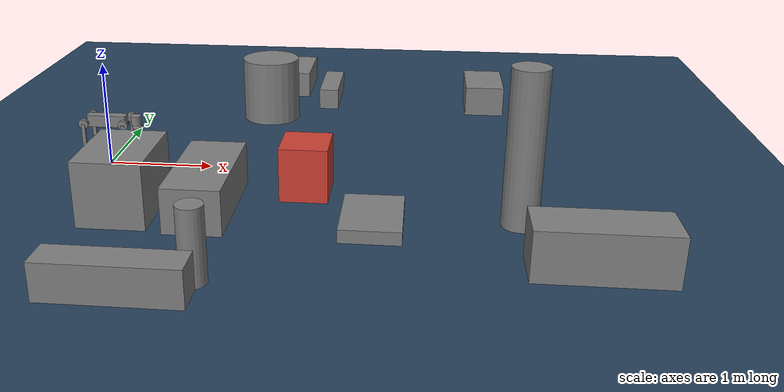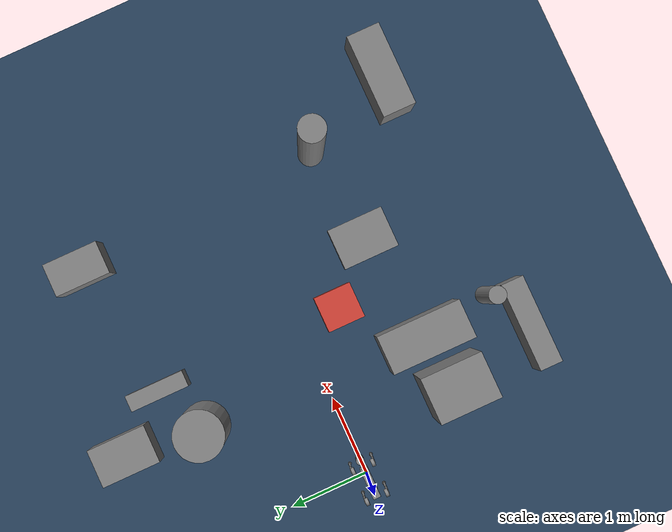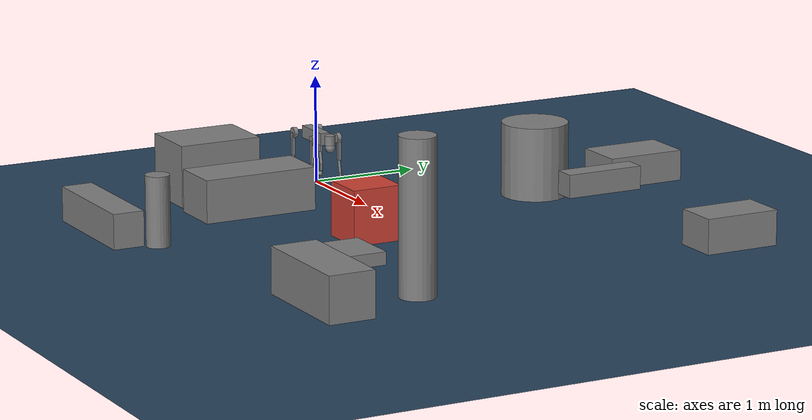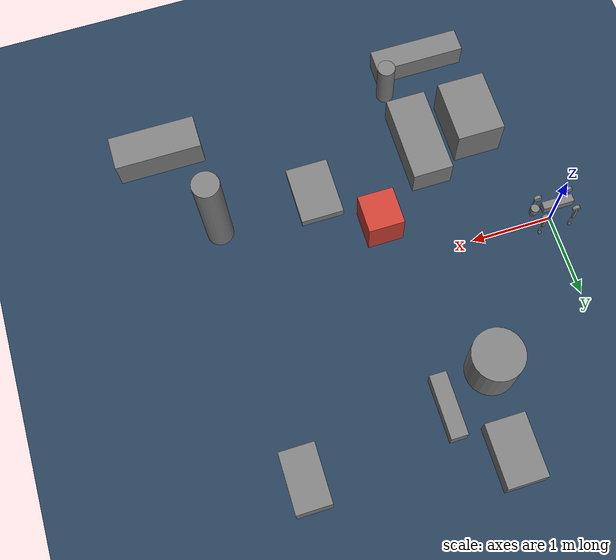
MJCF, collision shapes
<?xml version="1.0" ?>
<mujoco model="go2 rand_06">
  <include file="go2.xml"/>
  <visual>
    <headlight diffuse="0.6 0.6 0.6" ambient="0.3 0.3 0.3" specular="0 0 0"/>
    <rgba haze="0.15 0.25 0.35 1"/>
    <global azimuth="-130" elevation="-20"/>
  </visual>
  <asset>
    <texture type="skybox" builtin="gradient" rgb1="0.3 0.5 0.7" rgb2="0 0 0" width="512" height="3072"/>
    <texture type="2d" name="groundplane" builtin="checker" mark="edge" rgb1="0.2 0.3 0.4" rgb2="0.1 0.2 0.3" markrgb="0.8 0.8 0.8" width="300" height="300"/>
    <material name="groundplane" texture="groundplane" texuniform="true" texrepeat="5 5" reflectance="0.2"/>
  </asset>
  <worldbody>
    <light pos="0 0 1.5" dir="0 0 -1" directional="true"/>
    <geom name="floor" size="0 0 0.05" type="plane" material="groundplane"/>
    <geom type="box" pos="3.73204 2.14243 0.167452" size="0.208601 0.349801 0.159308"/>
    <geom type="box" pos="1.27531 -1.30153 0.368475" size="0.242365 0.52878 0.194362"/>
    <geom type="box" pos="2.64454 -1.15842 0.0673573" size="0.261935 0.360678 0.0591382"/>
    <geom type="box" pos="4.3296 -2.12469 0.385354" size="0.520458 0.206884 0.20323"/>
    <geom type="box" pos="0.876945 -2.53825 0.188107" size="0.560572 0.143774 0.158785"/>
    <geom type="box" pos="2.0015 1.85949 0.240365" size="0.101102 0.370906 0.107705"/>
    <geom type="box" pos="0.605686 -1.39375 0.448516" size="0.286206 0.38252 0.280576"/>
    <geom type="box" pos="1.46075 2.54218 0.188262" size="0.239593 0.369644 0.141341"/>
    <geom type="cylinder" pos="3.87734 -1.0159 0.689972" size="0.160626 0.689972 0.689972"/>
    <geom type="cylinder" pos="1.38434 -2.23754 0.319204" size="0.108509 0.319204 0.319204"/>
    <geom type="cylinder" pos="1.35188 1.55563 0.34029" size="0.306419 0.34029 0.34029"/>
    <geom type="box" pos="2.0088 -0.524655 0.25" size="0.218434 0.230511 0.25" rgba="0.8 0.25 0.2 1"/>
  </worldbody>
</mujoco>

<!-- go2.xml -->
<mujoco model="go2">
  <compiler angle="radian" meshdir="assets" autolimits="true" />

  <option cone="elliptic" impratio="100" />

  <default>
    <default class="go2">
      <geom friction="0.4" margin="0.001" condim="1"/>
      <joint axis="0 1 0" damping="0.1" armature="0.01" frictionloss="0.2"/>
      <motor ctrlrange="-23.7 23.7"/>
      <default class="abduction">
        <joint axis="1 0 0" range="-1.0472 1.0472"/>
      </default>
      <default class="hip">
        <default class="front_hip">
          <joint range="-1.5708 3.4907"/>
        </default>
        <default class="back_hip">
          <joint range="-0.5236 4.5379"/>
        </default>
      </default>
      <default class="knee">
        <joint range="-2.7227 -0.83776"/>
        <motor ctrlrange="-45.43 45.43"/>
      </default>
      <default class="visual">
        <geom type="mesh" contype="0" conaffinity="0" group="2"/>
      </default>
      <default class="collision">
        <geom group="3"/>
        <default class="foot">
          <geom size="0.022" pos="-0.002 0 -0.213" priority="1" condim="6"
            friction="0.4 0.02 0.01"/>
        </default>
      </default>
    </default>
  </default>

  <asset>
    <material name="metal" rgba=".9 .95 .95 1" />
    <material name="black" rgba="0 0 0 1" />
    <material name="white" rgba="1 1 1 1" />
    <material name="gray" rgba="0.671705 0.692426 0.774270 1" />
    <material name="transparent" rgba="1 1 1 0.01" />

    <mesh file="base_0.obj" />
    <mesh file="base_1.obj" />
    <mesh file="base_2.obj" />
    <mesh file="base_3.obj" />
    <mesh file="base_4.obj" />
    <mesh file="hip_0.obj" />
    <mesh file="hip_1.obj" />
    <mesh file="thigh_0.obj" />
    <mesh file="thigh_1.obj" />
    <mesh file="thigh_mirror_0.obj" />
    <mesh file="thigh_mirror_1.obj" />
    <mesh file="calf_0.obj" />
    <mesh file="calf_1.obj" />
    <mesh file="calf_mirror_0.obj" />
    <mesh file="calf_mirror_1.obj" />
    <mesh file="foot.obj" />
  </asset>

  <worldbody>
    <body name="base_link" pos="0 0 0.445" childclass="go2">
      <inertial pos="0.021112 0 -0.005366" quat="-0.000543471 0.713435 -0.00173769 0.700719"
        mass="6.921"
        diaginertia="0.107027 0.0980771 0.0244531" />
      <freejoint />
      <geom mesh="base_0" material="black" class="visual" />
      <geom mesh="base_1" material="black" class="visual" />
      <geom mesh="base_2" material="black" class="visual" />
      <geom mesh="base_3" material="white" class="visual" />
      <geom mesh="base_4" material="gray" class="visual" />
      <geom size="0.1881 0.04675 0.057" type="box" class="collision" />
      <geom size="0.05 0.045" pos="0.285 0 0.01" type="cylinder" class="collision" />
      <geom size="0.047" pos="0.293 0 -0.06" class="collision" />
      <site name="imu" pos="-0.02557 0 0.04232" />
      <body name="FL_hip" pos="0.1934 0.0465 0">
        <inertial pos="-0.0054 0.00194 -0.000105" quat="0.497014 0.499245 0.505462 0.498237"
          mass="0.678"
          diaginertia="0.00088403 0.000596003 0.000479967" />
        <joint name="FL_hip_joint" class="abduction" />
        <geom mesh="hip_0" material="metal" class="visual" />
        <geom mesh="hip_1" material="gray" class="visual" />
        <geom size="0.046 0.02" pos="0 0.08 0" quat="1 1 0 0" type="cylinder" class="collision" />
        <body name="FL_thigh" pos="0 0.0955 0">
          <inertial pos="-0.00374 -0.0223 -0.0327" quat="0.829533 0.0847635 -0.0200632 0.551623"
            mass="1.152"
            diaginertia="0.00594973 0.00584149 0.000878787" />
          <joint name="FL_thigh_joint" class="front_hip" />
          <geom mesh="thigh_0" material="metal" class="visual" />
          <geom mesh="thigh_1" material="gray" class="visual" />
          <geom size="0.1065 0.01225 0.017" pos="0 0 -0.1065" quat="0.707107 0 0.707107 0"
            type="box" class="collision" />
          <body name="FL_calf" pos="0 0 -0.213">
            <inertial pos="0.00629595 -0.000622121 -0.141417"
              quat="0.710672 0.00154099 -0.00450087 0.703508"
              mass="0.241352" diaginertia="0.0014901 0.00146356 5.31397e-05" />
            <joint name="FL_calf_joint" class="knee" />
            <geom mesh="calf_0" material="gray" class="visual" />
            <geom mesh="calf_1" material="black" class="visual" />
            <geom size="0.012 0.06" pos="0.008 0 -0.06" quat="0.994493 0 -0.104807 0"
              type="cylinder" class="collision" />
            <geom size="0.011 0.0325" pos="0.02 0 -0.148" quat="0.999688 0 0.0249974 0"
              type="cylinder" class="collision" />
            <geom pos="0 0 -0.213" mesh="foot" class="visual" material="black" />
            <geom name="FL" class="foot" />
            <site name="FL_touch" pos="0 0 -0.213" size="0.027" material="transparent"/>
            <body name="FL_foot" pos="0 0 -0.213"/>
          </body>
        </body>
      </body>
      <body name="FR_hip" pos="0.1934 -0.0465 0">
        <inertial pos="-0.0054 -0.00194 -0.000105" quat="0.498237 0.505462 0.499245 0.497014"
          mass="0.678"
          diaginertia="0.00088403 0.000596003 0.000479967" />
        <joint name="FR_hip_joint" class="abduction" />
        <geom mesh="hip_0" material="metal" class="visual" quat="4.63268e-05 1 0 0" />
        <geom mesh="hip_1" material="gray" class="visual" quat="4.63268e-05 1 0 0" />
        <geom size="0.046 0.02" pos="0 -0.08 0" quat="0.707107 0.707107 0 0" type="cylinder"
          class="collision" />
        <body name="FR_thigh" pos="0 -0.0955 0">
          <inertial pos="-0.00374 0.0223 -0.0327" quat="0.551623 -0.0200632 0.0847635 0.829533"
            mass="1.152"
            diaginertia="0.00594973 0.00584149 0.000878787" />
          <joint name="FR_thigh_joint" class="front_hip" />
          <geom mesh="thigh_mirror_0" material="metal" class="visual" />
          <geom mesh="thigh_mirror_1" material="gray" class="visual" />
          <geom size="0.1065 0.01225 0.017" pos="0 0 -0.1065" quat="0.707107 0 0.707107 0"
            type="box" class="collision" />
          <body name="FR_calf" pos="0 0 -0.213">
            <inertial pos="0.00629595 0.000622121 -0.141417"
              quat="0.703508 -0.00450087 0.00154099 0.710672"
              mass="0.241352" diaginertia="0.0014901 0.00146356 5.31397e-05" />
            <joint name="FR_calf_joint" class="knee" />
            <geom mesh="calf_mirror_0" material="gray" class="visual" />
            <geom mesh="calf_mirror_1" material="black" class="visual" />
            <geom size="0.013 0.06" pos="0.01 0 -0.06" quat="0.995004 0 -0.0998334 0"
              type="cylinder" class="collision" />
            <geom size="0.011 0.0325" pos="0.02 0 -0.148" quat="0.999688 0 0.0249974 0"
              type="cylinder" class="collision" />
            <geom pos="0 0 -0.213" mesh="foot" class="visual" material="black" />
            <geom name="FR" class="foot" />
            <site name="FR_touch" pos="0 0 -0.213" size="0.027" material="transparent"/>
            <body name="FR_foot" pos="0 0 -0.213"/>
          </body>
        </body>
      </body>
      <body name="RL_hip" pos="-0.1934 0.0465 0">
        <inertial pos="0.0054 0.00194 -0.000105" quat="0.505462 0.498237 0.497014 0.499245"
          mass="0.678"
          diaginertia="0.00088403 0.000596003 0.000479967" />
        <joint name="RL_hip_joint" class="abduction" />
        <geom mesh="hip_0" material="metal" class="visual" quat="4.63268e-05 0 1 0" />
        <geom mesh="hip_1" material="gray" class="visual" quat="4.63268e-05 0 1 0" />
        <geom size="0.046 0.02" pos="0 0.08 0" quat="0.707107 0.707107 0 0" type="cylinder"
          class="collision" />
        <body name="RL_thigh" pos="0 0.0955 0">
          <inertial pos="-0.00374 -0.0223 -0.0327" quat="0.829533 0.0847635 -0.0200632 0.551623"
            mass="1.152"
            diaginertia="0.00594973 0.00584149 0.000878787" />
          <joint name="RL_thigh_joint" class="back_hip" />
          <geom mesh="thigh_0" material="metal" class="visual" />
          <geom mesh="thigh_1" material="gray" class="visual" />
          <geom size="0.1065 0.01225 0.017" pos="0 0 -0.1065" quat="0.707107 0 0.707107 0"
            type="box" class="collision" />
          <body name="RL_calf" pos="0 0 -0.213">
            <inertial pos="0.00629595 -0.000622121 -0.141417"
              quat="0.710672 0.00154099 -0.00450087 0.703508"
              mass="0.241352" diaginertia="0.0014901 0.00146356 5.31397e-05" />
            <joint name="RL_calf_joint" class="knee" />
            <geom mesh="calf_0" material="gray" class="visual" />
            <geom mesh="calf_1" material="black" class="visual" />
            <geom size="0.013 0.06" pos="0.01 0 -0.06" quat="0.995004 0 -0.0998334 0"
              type="cylinder" class="collision" />
            <geom size="0.011 0.0325" pos="0.02 0 -0.148" quat="0.999688 0 0.0249974 0"
              type="cylinder" class="collision" />
            <geom pos="0 0 -0.213" mesh="foot" class="visual" material="black" />
            <geom name="RL" class="foot" />
            <site name="RL_touch" pos="0 0 -0.213" size="0.027" material="transparent"/>
            <body name="RL_foot" pos="0 0 -0.213" />
          </body>
        </body>
      </body>
      <body name="RR_hip" pos="-0.1934 -0.0465 0">
        <inertial pos="0.0054 -0.00194 -0.000105" quat="0.499245 0.497014 0.498237 0.505462"
          mass="0.678"
          diaginertia="0.00088403 0.000596003 0.000479967" />
        <joint name="RR_hip_joint" class="abduction" />
        <geom mesh="hip_0" material="metal" class="visual"
          quat="2.14617e-09 4.63268e-05 4.63268e-05 -1" />
        <geom mesh="hip_1" material="gray" class="visual"
          quat="2.14617e-09 4.63268e-05 4.63268e-05 -1" />
        <geom size="0.046 0.02" pos="0 -0.08 0" quat="0.707107 0.707107 0 0" type="cylinder"
          class="collision" />
        <body name="RR_thigh" pos="0 -0.0955 0">
          <inertial pos="-0.00374 0.0223 -0.0327" quat="0.551623 -0.0200632 0.0847635 0.829533"
            mass="1.152"
            diaginertia="0.00594973 0.00584149 0.000878787" />
          <joint name="RR_thigh_joint" class="back_hip" />
          <geom mesh="thigh_mirror_0" material="metal" class="visual" />
          <geom mesh="thigh_mirror_1" material="gray" class="visual" />
          <geom size="0.1065 0.01225 0.017" pos="0 0 -0.1065" quat="0.707107 0 0.707107 0"
            type="box" class="collision" />
          <body name="RR_calf" pos="0 0 -0.213">
            <inertial pos="0.00629595 0.000622121 -0.141417"
              quat="0.703508 -0.00450087 0.00154099 0.710672"
              mass="0.241352" diaginertia="0.0014901 0.00146356 5.31397e-05" />
            <joint name="RR_calf_joint" class="knee" />
            <geom mesh="calf_mirror_0" material="gray" class="visual" />
            <geom mesh="calf_mirror_1" material="black" class="visual" />
            <geom size="0.013 0.06" pos="0.01 0 -0.06" quat="0.995004 0 -0.0998334 0"
              type="cylinder" class="collision" />
            <geom size="0.011 0.0325" pos="0.02 0 -0.148" quat="0.999688 0 0.0249974 0"
              type="cylinder" class="collision" />
            <geom pos="0 0 -0.213" mesh="foot" class="visual" material="black" />
            <geom name="RR" class="foot" />
            <site name="RR_touch" pos="0 0 -0.213" size="0.027" material="transparent"/>
            <body name="RR_foot" pos="0 0 -0.213"/>
          </body>
        </body>
      </body>
    </body>
  </worldbody>

  <actuator>
    <motor class="abduction" name="FR_hip" joint="FR_hip_joint" />
    <motor class="hip" name="FR_thigh" joint="FR_thigh_joint" />
    <motor class="knee" name="FR_calf" joint="FR_calf_joint" />
    <motor class="abduction" name="FL_hip" joint="FL_hip_joint" />
    <motor class="hip" name="FL_thigh" joint="FL_thigh_joint" />
    <motor class="knee" name="FL_calf" joint="FL_calf_joint" />
    <motor class="abduction" name="RR_hip" joint="RR_hip_joint" />
    <motor class="hip" name="RR_thigh" joint="RR_thigh_joint" />
    <motor class="knee" name="RR_calf" joint="RR_calf_joint" />
    <motor class="abduction" name="RL_hip" joint="RL_hip_joint" />
    <motor class="hip" name="RL_thigh" joint="RL_thigh_joint" />
    <motor class="knee" name="RL_calf" joint="RL_calf_joint" />
  </actuator>

  <sensor>
    <jointpos name="FR_hip_pos" joint="FR_hip_joint" />
    <jointpos name="FR_thigh_pos" joint="FR_thigh_joint" />
    <jointpos name="FR_calf_pos" joint="FR_calf_joint" />
    <jointpos name="FL_hip_pos" joint="FL_hip_joint" />
    <jointpos name="FL_thigh_pos" joint="FL_thigh_joint" />
    <jointpos name="FL_calf_pos" joint="FL_calf_joint" />
    <jointpos name="RR_hip_pos" joint="RR_hip_joint" />
    <jointpos name="RR_thigh_pos" joint="RR_thigh_joint" />
    <jointpos name="RR_calf_pos" joint="RR_calf_joint" />
    <jointpos name="RL_hip_pos" joint="RL_hip_joint" />
    <jointpos name="RL_thigh_pos" joint="RL_thigh_joint" />
    <jointpos name="RL_calf_pos" joint="RL_calf_joint" />

    <jointvel name="FR_hip_vel" joint="FR_hip_joint" />
    <jointvel name="FR_thigh_vel" joint="FR_thigh_joint" />
    <jointvel name="FR_calf_vel" joint="FR_calf_joint" />
    <jointvel name="FL_hip_vel" joint="FL_hip_joint" />
    <jointvel name="FL_thigh_vel" joint="FL_thigh_joint" />
    <jointvel name="FL_calf_vel" joint="FL_calf_joint" />
    <jointvel name="RR_hip_vel" joint="RR_hip_joint" />
    <jointvel name="RR_thigh_vel" joint="RR_thigh_joint" />
    <jointvel name="RR_calf_vel" joint="RR_calf_joint" />
    <jointvel name="RL_hip_vel" joint="RL_hip_joint" />
    <jointvel name="RL_thigh_vel" joint="RL_thigh_joint" />
    <jointvel name="RL_calf_vel" joint="RL_calf_joint" />

    <jointactuatorfrc name="FR_hip_torque" joint="FR_hip_joint" noise="0.01" />
    <jointactuatorfrc name="FR_thigh_torque" joint="FR_thigh_joint" noise="0.01" />
    <jointactuatorfrc name="FR_calf_torque" joint="FR_calf_joint" noise="0.01" />
    <jointactuatorfrc name="FL_hip_torque" joint="FL_hip_joint" noise="0.01" />
    <jointactuatorfrc name="FL_thigh_torque" joint="FL_thigh_joint" noise="0.01" />
    <jointactuatorfrc name="FL_calf_torque" joint="FL_calf_joint" noise="0.01" />
    <jointactuatorfrc name="RR_hip_torque" joint="RR_hip_joint" noise="0.01" />
    <jointactuatorfrc name="RR_thigh_torque" joint="RR_thigh_joint" noise="0.01" />
    <jointactuatorfrc name="RR_calf_torque" joint="RR_calf_joint" noise="0.01" />
    <jointactuatorfrc name="RL_hip_torque" joint="RL_hip_joint" noise="0.01" />
    <jointactuatorfrc name="RL_thigh_torque" joint="RL_thigh_joint" noise="0.01" />
    <jointactuatorfrc name="RL_calf_torque" joint="RL_calf_joint" noise="0.01" />

    <framequat name="imu_quat" objtype="site" objname="imu" />
    <gyro name="imu_gyro" site="imu" />
    <accelerometer name="imu_acc" site="imu" />

    <framepos name="frame_pos" objtype="site" objname="imu" />
    <framelinvel name="frame_vel" objtype="site" objname="imu" />

    <touch name="FR_touch" site="FR_touch" />
    <touch name="FL_touch" site="FL_touch" />
    <touch name="RR_touch" site="RR_touch" />
    <touch name="RL_touch" site="RL_touch" />
  </sensor>

  <keyframe>
    <key name="home" qpos="0 0 0.445 1 0 0 0 0 0.8 -1.5 0 0.8 -1.5 0 0.8 -1.5 0 0.8 -1.5"
         ctrl="0 0 0 0 0 0 0 0 0 0 0 0" />
  </keyframe>
</mujoco>
